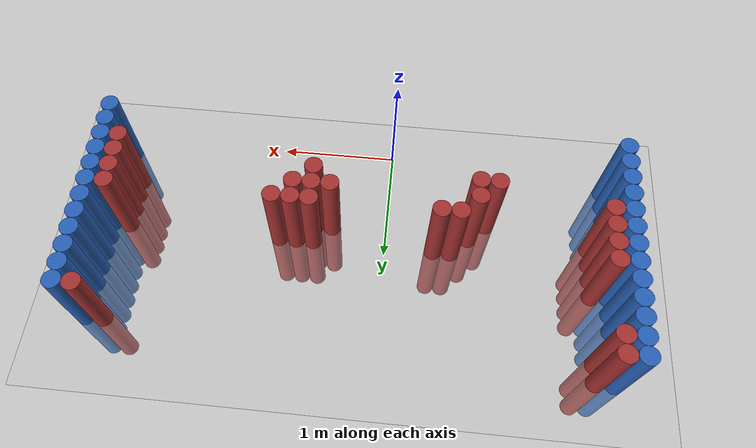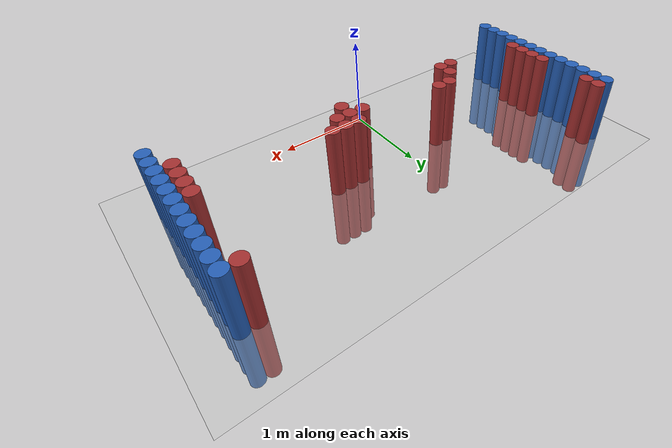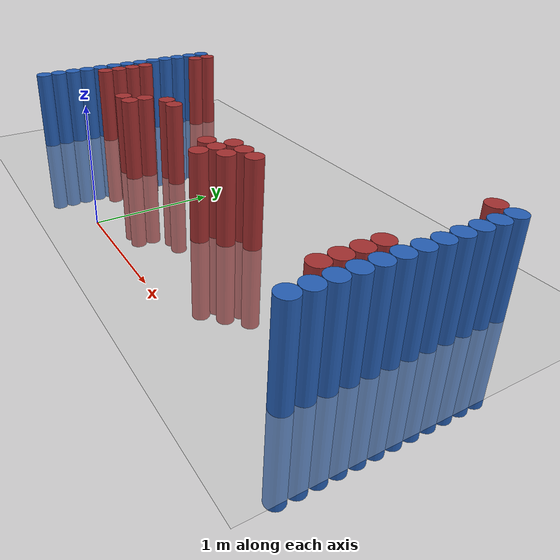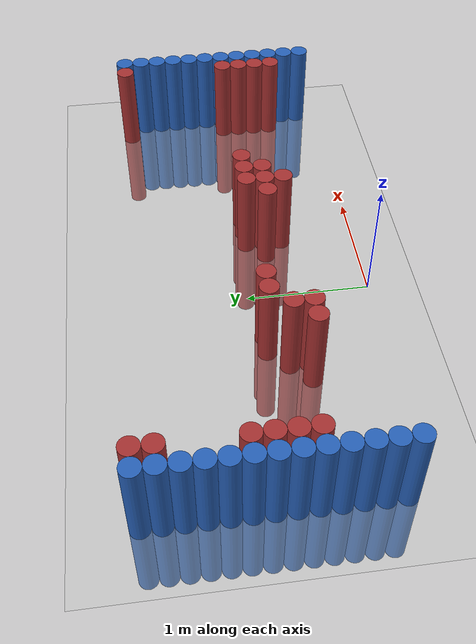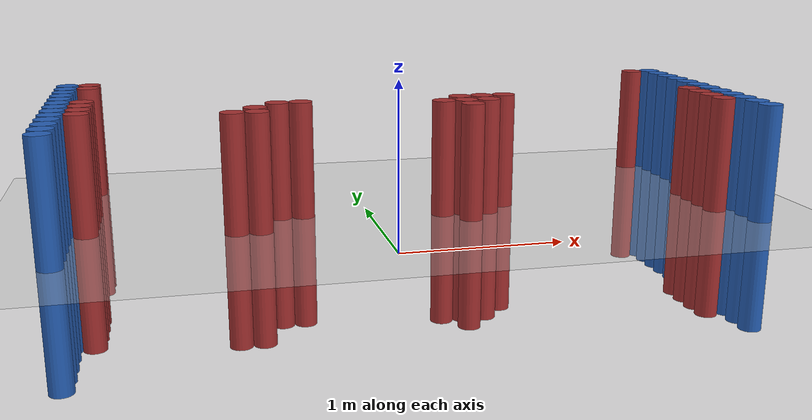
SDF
<sdf version="1.6">
 <world name="default">
  <model name="ground_plane">
   <static>1</static>
   <link name="link">
    <collision name="collision">
     <geometry><plane><normal>0 0 1</normal><size>100 100</size></plane></geometry>
     <surface><friction><ode><mu>100</mu><mu2>50</mu2></ode></friction></surface>
    </collision>
    <visual name="visual">
     <cast_shadows>0</cast_shadows>
     <geometry><plane><normal>0 0 1</normal><size>100 100</size></plane></geometry>
     <material>
      <script><uri>file://media/materials/scripts/gazebo.material</uri><name>Gazebo/Grey</name></script>
     </material>
    </visual>
   </link>
  </model>
  <model name="unit_cylinder_96">
   <static>1</static>
   <pose>-1.925000 0.175000 0.000000 0.000000 0.000000 0.000000</pose>
   <link name="link">
    <inertial>
     <mass>1</mass>
     <inertia><ixx>0.145833</ixx><ixy>0</ixy><ixz>0</ixz><iyy>0.145833</iyy><iyz>0</iyz><izz>0.125</izz></inertia>
    </inertial>
    <collision name="collision">
     <geometry><cylinder><radius>0.075000</radius><length>1.5</length></cylinder></geometry>
    </collision>
    <visual name="visual">
     <geometry><cylinder><radius>0.075000</radius><length>1.5</length></cylinder></geometry>
     <material>
      <ambient>0.152000 0.379000 0.720000 1</ambient>
      <diffuse>0.152000 0.379000 0.720000 1</diffuse>
     </material>
     <material>
      <script><name>Gazebo/Grey</name><uri>file://media/materials/scripts/gazebo.material</uri></script>
     </material>
    </visual>
   </link>
  </model>
  <model name="unit_cylinder_97">
   <static>1</static>
   <pose>-1.925000 0.325000 0.000000 0.000000 0.000000 0.000000</pose>
   <link name="link">
    <inertial>
     <mass>1</mass>
     <inertia><ixx>0.145833</ixx><ixy>0</ixy><ixz>0</ixz><iyy>0.145833</iyy><iyz>0</iyz><izz>0.125</izz></inertia>
    </inertial>
    <collision name="collision">
     <geometry><cylinder><radius>0.075000</radius><length>1.5</length></cylinder></geometry>
    </collision>
    <visual name="visual">
     <geometry><cylinder><radius>0.075000</radius><length>1.5</length></cylinder></geometry>
     <material>
      <ambient>0.152000 0.379000 0.720000 1</ambient>
      <diffuse>0.152000 0.379000 0.720000 1</diffuse>
     </material>
     <material>
      <script><name>Gazebo/Grey</name><uri>file://media/materials/scripts/gazebo.material</uri></script>
     </material>
    </visual>
   </link>
  </model>
  <model name="unit_cylinder_98">
   <static>1</static>
   <pose>-1.925000 0.475000 0.000000 0.000000 0.000000 0.000000</pose>
   <link name="link">
    <inertial>
     <mass>1</mass>
     <inertia><ixx>0.145833</ixx><ixy>0</ixy><ixz>0</ixz><iyy>0.145833</iyy><iyz>0</iyz><izz>0.125</izz></inertia>
    </inertial>
    <collision name="collision">
     <geometry><cylinder><radius>0.075000</radius><length>1.5</length></cylinder></geometry>
    </collision>
    <visual name="visual">
     <geometry><cylinder><radius>0.075000</radius><length>1.5</length></cylinder></geometry>
     <material>
      <ambient>0.152000 0.379000 0.720000 1</ambient>
      <diffuse>0.152000 0.379000 0.720000 1</diffuse>
     </material>
     <material>
      <script><name>Gazebo/Grey</name><uri>file://media/materials/scripts/gazebo.material</uri></script>
     </material>
    </visual>
   </link>
  </model>
  <model name="unit_cylinder_99">
   <static>1</static>
   <pose>-1.925000 0.625000 0.000000 0.000000 0.000000 0.000000</pose>
   <link name="link">
    <inertial>
     <mass>1</mass>
     <inertia><ixx>0.145833</ixx><ixy>0</ixy><ixz>0</ixz><iyy>0.145833</iyy><iyz>0</iyz><izz>0.125</izz></inertia>
    </inertial>
    <collision name="collision">
     <geometry><cylinder><radius>0.075000</radius><length>1.5</length></cylinder></geometry>
    </collision>
    <visual name="visual">
     <geometry><cylinder><radius>0.075000</radius><length>1.5</length></cylinder></geometry>
     <material>
      <ambient>0.152000 0.379000 0.720000 1</ambient>
      <diffuse>0.152000 0.379000 0.720000 1</diffuse>
     </material>
     <material>
      <script><name>Gazebo/Grey</name><uri>file://media/materials/scripts/gazebo.material</uri></script>
     </material>
    </visual>
   </link>
  </model>
  <model name="unit_cylinder_100">
   <static>1</static>
   <pose>-1.925000 0.775000 0.000000 0.000000 0.000000 0.000000</pose>
   <link name="link">
    <inertial>
     <mass>1</mass>
     <inertia><ixx>0.145833</ixx><ixy>0</ixy><ixz>0</ixz><iyy>0.145833</iyy><iyz>0</iyz><izz>0.125</izz></inertia>
    </inertial>
    <collision name="collision">
     <geometry><cylinder><radius>0.075000</radius><length>1.5</length></cylinder></geometry>
    </collision>
    <visual name="visual">
     <geometry><cylinder><radius>0.075000</radius><length>1.5</length></cylinder></geometry>
     <material>
      <ambient>0.152000 0.379000 0.720000 1</ambient>
      <diffuse>0.152000 0.379000 0.720000 1</diffuse>
     </material>
     <material>
      <script><name>Gazebo/Grey</name><uri>file://media/materials/scripts/gazebo.material</uri></script>
     </material>
    </visual>
   </link>
  </model>
  <model name="unit_cylinder_101">
   <static>1</static>
   <pose>-1.925000 0.925000 0.000000 0.000000 0.000000 0.000000</pose>
   <link name="link">
    <inertial>
     <mass>1</mass>
     <inertia><ixx>0.145833</ixx><ixy>0</ixy><ixz>0</ixz><iyy>0.145833</iyy><iyz>0</iyz><izz>0.125</izz></inertia>
    </inertial>
    <collision name="collision">
     <geometry><cylinder><radius>0.075000</radius><length>1.5</length></cylinder></geometry>
    </collision>
    <visual name="visual">
     <geometry><cylinder><radius>0.075000</radius><length>1.5</length></cylinder></geometry>
     <material>
      <ambient>0.152000 0.379000 0.720000 1</ambient>
      <diffuse>0.152000 0.379000 0.720000 1</diffuse>
     </material>
     <material>
      <script><name>Gazebo/Grey</name><uri>file://media/materials/scripts/gazebo.material</uri></script>
     </material>
    </visual>
   </link>
  </model>
  <model name="unit_cylinder_102">
   <static>1</static>
   <pose>-1.925000 1.075000 0.000000 0.000000 0.000000 0.000000</pose>
   <link name="link">
    <inertial>
     <mass>1</mass>
     <inertia><ixx>0.145833</ixx><ixy>0</ixy><ixz>0</ixz><iyy>0.145833</iyy><iyz>0</iyz><izz>0.125</izz></inertia>
    </inertial>
    <collision name="collision">
     <geometry><cylinder><radius>0.075000</radius><length>1.5</length></cylinder></geometry>
    </collision>
    <visual name="visual">
     <geometry><cylinder><radius>0.075000</radius><length>1.5</length></cylinder></geometry>
     <material>
      <ambient>0.152000 0.379000 0.720000 1</ambient>
      <diffuse>0.152000 0.379000 0.720000 1</diffuse>
     </material>
     <material>
      <script><name>Gazebo/Grey</name><uri>file://media/materials/scripts/gazebo.material</uri></script>
     </material>
    </visual>
   </link>
  </model>
  <model name="unit_cylinder_103">
   <static>1</static>
   <pose>-1.925000 1.225000 0.000000 0.000000 0.000000 0.000000</pose>
   <link name="link">
    <inertial>
     <mass>1</mass>
     <inertia><ixx>0.145833</ixx><ixy>0</ixy><ixz>0</ixz><iyy>0.145833</iyy><iyz>0</iyz><izz>0.125</izz></inertia>
    </inertial>
    <collision name="collision">
     <geometry><cylinder><radius>0.075000</radius><length>1.5</length></cylinder></geometry>
    </collision>
    <visual name="visual">
     <geometry><cylinder><radius>0.075000</radius><length>1.5</length></cylinder></geometry>
     <material>
      <ambient>0.152000 0.379000 0.720000 1</ambient>
      <diffuse>0.152000 0.379000 0.720000 1</diffuse>
     </material>
     <material>
      <script><name>Gazebo/Grey</name><uri>file://media/materials/scripts/gazebo.material</uri></script>
     </material>
    </visual>
   </link>
  </model>
  <model name="unit_cylinder_104">
   <static>1</static>
   <pose>-1.925000 1.375000 0.000000 0.000000 0.000000 0.000000</pose>
   <link name="link">
    <inertial>
     <mass>1</mass>
     <inertia><ixx>0.145833</ixx><ixy>0</ixy><ixz>0</ixz><iyy>0.145833</iyy><iyz>0</iyz><izz>0.125</izz></inertia>
    </inertial>
    <collision name="collision">
     <geometry><cylinder><radius>0.075000</radius><length>1.5</length></cylinder></geometry>
    </collision>
    <visual name="visual">
     <geometry><cylinder><radius>0.075000</radius><length>1.5</length></cylinder></geometry>
     <material>
      <ambient>0.152000 0.379000 0.720000 1</ambient>
      <diffuse>0.152000 0.379000 0.720000 1</diffuse>
     </material>
     <material>
      <script><name>Gazebo/Grey</name><uri>file://media/materials/scripts/gazebo.material</uri></script>
     </material>
    </visual>
   </link>
  </model>
  <model name="unit_cylinder_105">
   <static>1</static>
   <pose>-1.925000 1.525000 0.000000 0.000000 0.000000 0.000000</pose>
   <link name="link">
    <inertial>
     <mass>1</mass>
     <inertia><ixx>0.145833</ixx><ixy>0</ixy><ixz>0</ixz><iyy>0.145833</iyy><iyz>0</iyz><izz>0.125</izz></inertia>
    </inertial>
    <collision name="collision">
     <geometry><cylinder><radius>0.075000</radius><length>1.5</length></cylinder></geometry>
    </collision>
    <visual name="visual">
     <geometry><cylinder><radius>0.075000</radius><length>1.5</length></cylinder></geometry>
     <material>
      <ambient>0.152000 0.379000 0.720000 1</ambient>
      <diffuse>0.152000 0.379000 0.720000 1</diffuse>
     </material>
     <material>
      <script><name>Gazebo/Grey</name><uri>file://media/materials/scripts/gazebo.material</uri></script>
     </material>
    </visual>
   </link>
  </model>
  <model name="unit_cylinder_106">
   <static>1</static>
   <pose>-1.925000 1.675000 0.000000 0.000000 0.000000 0.000000</pose>
   <link name="link">
    <inertial>
     <mass>1</mass>
     <inertia><ixx>0.145833</ixx><ixy>0</ixy><ixz>0</ixz><iyy>0.145833</iyy><iyz>0</iyz><izz>0.125</izz></inertia>
    </inertial>
    <collision name="collision">
     <geometry><cylinder><radius>0.075000</radius><length>1.5</length></cylinder></geometry>
    </collision>
    <visual name="visual">
     <geometry><cylinder><radius>0.075000</radius><length>1.5</length></cylinder></geometry>
     <material>
      <ambient>0.152000 0.379000 0.720000 1</ambient>
      <diffuse>0.152000 0.379000 0.720000 1</diffuse>
     </material>
     <material>
      <script><name>Gazebo/Grey</name><uri>file://media/materials/scripts/gazebo.material</uri></script>
     </material>
    </visual>
   </link>
  </model>
  <model name="unit_cylinder_107">
   <static>1</static>
   <pose>-1.925000 1.825000 0.000000 0.000000 0.000000 0.000000</pose>
   <link name="link">
    <inertial>
     <mass>1</mass>
     <inertia><ixx>0.145833</ixx><ixy>0</ixy><ixz>0</ixz><iyy>0.145833</iyy><iyz>0</iyz><izz>0.125</izz></inertia>
    </inertial>
    <collision name="collision">
     <geometry><cylinder><radius>0.075000</radius><length>1.5</length></cylinder></geometry>
    </collision>
    <visual name="visual">
     <geometry><cylinder><radius>0.075000</radius><length>1.5</length></cylinder></geometry>
     <material>
      <ambient>0.152000 0.379000 0.720000 1</ambient>
      <diffuse>0.152000 0.379000 0.720000 1</diffuse>
     </material>
     <material>
      <script><name>Gazebo/Grey</name><uri>file://media/materials/scripts/gazebo.material</uri></script>
     </material>
    </visual>
   </link>
  </model>
  <model name="unit_cylinder_108">
   <static>1</static>
   <pose>-1.925000 1.975000 0.000000 0.000000 0.000000 0.000000</pose>
   <link name="link">
    <inertial>
     <mass>1</mass>
     <inertia><ixx>0.145833</ixx><ixy>0</ixy><ixz>0</ixz><iyy>0.145833</iyy><iyz>0</iyz><izz>0.125</izz></inertia>
    </inertial>
    <collision name="collision">
     <geometry><cylinder><radius>0.075000</radius><length>1.5</length></cylinder></geometry>
    </collision>
    <visual name="visual">
     <geometry><cylinder><radius>0.075000</radius><length>1.5</length></cylinder></geometry>
     <material>
      <ambient>0.152000 0.379000 0.720000 1</ambient>
      <diffuse>0.152000 0.379000 0.720000 1</diffuse>
     </material>
     <material>
      <script><name>Gazebo/Grey</name><uri>file://media/materials/scripts/gazebo.material</uri></script>
     </material>
    </visual>
   </link>
  </model>
  <model name="unit_cylinder_126">
   <static>1</static>
   <pose>-1.775000 0.775000 0.000000 0.000000 0.000000 0.000000</pose>
   <link name="link">
    <inertial>
     <mass>1</mass>
     <inertia><ixx>0.145833</ixx><ixy>0</ixy><ixz>0</ixz><iyy>0.145833</iyy><iyz>0</iyz><izz>0.125</izz></inertia>
    </inertial>
    <collision name="collision">
     <geometry><cylinder><radius>0.075000</radius><length>1.5</length></cylinder></geometry>
    </collision>
    <visual name="visual">
     <geometry><cylinder><radius>0.075000</radius><length>1.5</length></cylinder></geometry>
     <material>
      <ambient>0.648000 0.192000 0.192000 1</ambient>
      <diffuse>0.648000 0.192000 0.192000 1</diffuse>
     </material>
     <material>
      <script><name>Gazebo/Grey</name><uri>file://media/materials/scripts/gazebo.material</uri></script>
     </material>
    </visual>
   </link>
  </model>
  <model name="unit_cylinder_127">
   <static>1</static>
   <pose>-1.775000 0.925000 0.000000 0.000000 0.000000 0.000000</pose>
   <link name="link">
    <inertial>
     <mass>1</mass>
     <inertia><ixx>0.145833</ixx><ixy>0</ixy><ixz>0</ixz><iyy>0.145833</iyy><iyz>0</iyz><izz>0.125</izz></inertia>
    </inertial>
    <collision name="collision">
     <geometry><cylinder><radius>0.075000</radius><length>1.5</length></cylinder></geometry>
    </collision>
    <visual name="visual">
     <geometry><cylinder><radius>0.075000</radius><length>1.5</length></cylinder></geometry>
     <material>
      <ambient>0.648000 0.192000 0.192000 1</ambient>
      <diffuse>0.648000 0.192000 0.192000 1</diffuse>
     </material>
     <material>
      <script><name>Gazebo/Grey</name><uri>file://media/materials/scripts/gazebo.material</uri></script>
     </material>
    </visual>
   </link>
  </model>
  <model name="unit_cylinder_128">
   <static>1</static>
   <pose>-1.775000 1.075000 0.000000 0.000000 0.000000 0.000000</pose>
   <link name="link">
    <inertial>
     <mass>1</mass>
     <inertia><ixx>0.145833</ixx><ixy>0</ixy><ixz>0</ixz><iyy>0.145833</iyy><iyz>0</iyz><izz>0.125</izz></inertia>
    </inertial>
    <collision name="collision">
     <geometry><cylinder><radius>0.075000</radius><length>1.5</length></cylinder></geometry>
    </collision>
    <visual name="visual">
     <geometry><cylinder><radius>0.075000</radius><length>1.5</length></cylinder></geometry>
     <material>
      <ambient>0.648000 0.192000 0.192000 1</ambient>
      <diffuse>0.648000 0.192000 0.192000 1</diffuse>
     </material>
     <material>
      <script><name>Gazebo/Grey</name><uri>file://media/materials/scripts/gazebo.material</uri></script>
     </material>
    </visual>
   </link>
  </model>
  <model name="unit_cylinder_129">
   <static>1</static>
   <pose>-1.775000 1.225000 0.000000 0.000000 0.000000 0.000000</pose>
   <link name="link">
    <inertial>
     <mass>1</mass>
     <inertia><ixx>0.145833</ixx><ixy>0</ixy><ixz>0</ixz><iyy>0.145833</iyy><iyz>0</iyz><izz>0.125</izz></inertia>
    </inertial>
    <collision name="collision">
     <geometry><cylinder><radius>0.075000</radius><length>1.5</length></cylinder></geometry>
    </collision>
    <visual name="visual">
     <geometry><cylinder><radius>0.075000</radius><length>1.5</length></cylinder></geometry>
     <material>
      <ambient>0.648000 0.192000 0.192000 1</ambient>
      <diffuse>0.648000 0.192000 0.192000 1</diffuse>
     </material>
     <material>
      <script><name>Gazebo/Grey</name><uri>file://media/materials/scripts/gazebo.material</uri></script>
     </material>
    </visual>
   </link>
  </model>
  <model name="unit_cylinder_130">
   <static>1</static>
   <pose>-1.775000 1.825000 0.000000 0.000000 0.000000 0.000000</pose>
   <link name="link">
    <inertial>
     <mass>1</mass>
     <inertia><ixx>0.145833</ixx><ixy>0</ixy><ixz>0</ixz><iyy>0.145833</iyy><iyz>0</iyz><izz>0.125</izz></inertia>
    </inertial>
    <collision name="collision">
     <geometry><cylinder><radius>0.075000</radius><length>1.5</length></cylinder></geometry>
    </collision>
    <visual name="visual">
     <geometry><cylinder><radius>0.075000</radius><length>1.5</length></cylinder></geometry>
     <material>
      <ambient>0.648000 0.192000 0.192000 1</ambient>
      <diffuse>0.648000 0.192000 0.192000 1</diffuse>
     </material>
     <material>
      <script><name>Gazebo/Grey</name><uri>file://media/materials/scripts/gazebo.material</uri></script>
     </material>
    </visual>
   </link>
  </model>
  <model name="unit_cylinder_131">
   <static>1</static>
   <pose>-1.775000 1.975000 0.000000 0.000000 0.000000 0.000000</pose>
   <link name="link">
    <inertial>
     <mass>1</mass>
     <inertia><ixx>0.145833</ixx><ixy>0</ixy><ixz>0</ixz><iyy>0.145833</iyy><iyz>0</iyz><izz>0.125</izz></inertia>
    </inertial>
    <collision name="collision">
     <geometry><cylinder><radius>0.075000</radius><length>1.5</length></cylinder></geometry>
    </collision>
    <visual name="visual">
     <geometry><cylinder><radius>0.075000</radius><length>1.5</length></cylinder></geometry>
     <material>
      <ambient>0.648000 0.192000 0.192000 1</ambient>
      <diffuse>0.648000 0.192000 0.192000 1</diffuse>
     </material>
     <material>
      <script><name>Gazebo/Grey</name><uri>file://media/materials/scripts/gazebo.material</uri></script>
     </material>
    </visual>
   </link>
  </model>
  <model name="unit_cylinder_161">
   <static>1</static>
   <pose>-0.875000 0.625000 0.000000 0.000000 0.000000 0.000000</pose>
   <link name="link">
    <inertial>
     <mass>1</mass>
     <inertia><ixx>0.145833</ixx><ixy>0</ixy><ixz>0</ixz><iyy>0.145833</iyy><iyz>0</iyz><izz>0.125</izz></inertia>
    </inertial>
    <collision name="collision">
     <geometry><cylinder><radius>0.075000</radius><length>1.5</length></cylinder></geometry>
    </collision>
    <visual name="visual">
     <geometry><cylinder><radius>0.075000</radius><length>1.5</length></cylinder></geometry>
     <material>
      <ambient>0.648000 0.192000 0.192000 1</ambient>
      <diffuse>0.648000 0.192000 0.192000 1</diffuse>
     </material>
     <material>
      <script><name>Gazebo/Grey</name><uri>file://media/materials/scripts/gazebo.material</uri></script>
     </material>
    </visual>
   </link>
  </model>
  <model name="unit_cylinder_166">
   <static>1</static>
   <pose>-0.725000 0.625000 0.000000 0.000000 0.000000 0.000000</pose>
   <link name="link">
    <inertial>
     <mass>1</mass>
     <inertia><ixx>0.145833</ixx><ixy>0</ixy><ixz>0</ixz><iyy>0.145833</iyy><iyz>0</iyz><izz>0.125</izz></inertia>
    </inertial>
    <collision name="collision">
     <geometry><cylinder><radius>0.075000</radius><length>1.5</length></cylinder></geometry>
    </collision>
    <visual name="visual">
     <geometry><cylinder><radius>0.075000</radius><length>1.5</length></cylinder></geometry>
     <material>
      <ambient>0.648000 0.192000 0.192000 1</ambient>
      <diffuse>0.648000 0.192000 0.192000 1</diffuse>
     </material>
     <material>
      <script><name>Gazebo/Grey</name><uri>file://media/materials/scripts/gazebo.material</uri></script>
     </material>
    </visual>
   </link>
  </model>
  <model name="unit_cylinder_167">
   <static>1</static>
   <pose>-0.725000 0.775000 0.000000 0.000000 0.000000 0.000000</pose>
   <link name="link">
    <inertial>
     <mass>1</mass>
     <inertia><ixx>0.145833</ixx><ixy>0</ixy><ixz>0</ixz><iyy>0.145833</iyy><iyz>0</iyz><izz>0.125</izz></inertia>
    </inertial>
    <collision name="collision">
     <geometry><cylinder><radius>0.075000</radius><length>1.5</length></cylinder></geometry>
    </collision>
    <visual name="visual">
     <geometry><cylinder><radius>0.075000</radius><length>1.5</length></cylinder></geometry>
     <material>
      <ambient>0.648000 0.192000 0.192000 1</ambient>
      <diffuse>0.648000 0.192000 0.192000 1</diffuse>
     </material>
     <material>
      <script><name>Gazebo/Grey</name><uri>file://media/materials/scripts/gazebo.material</uri></script>
     </material>
    </visual>
   </link>
  </model>
  <model name="unit_cylinder_172">
   <static>1</static>
   <pose>-0.575000 0.925000 0.000000 0.000000 0.000000 0.000000</pose>
   <link name="link">
    <inertial>
     <mass>1</mass>
     <inertia><ixx>0.145833</ixx><ixy>0</ixy><ixz>0</ixz><iyy>0.145833</iyy><iyz>0</iyz><izz>0.125</izz></inertia>
    </inertial>
    <collision name="collision">
     <geometry><cylinder><radius>0.075000</radius><length>1.5</length></cylinder></geometry>
    </collision>
    <visual name="visual">
     <geometry><cylinder><radius>0.075000</radius><length>1.5</length></cylinder></geometry>
     <material>
      <ambient>0.648000 0.192000 0.192000 1</ambient>
      <diffuse>0.648000 0.192000 0.192000 1</diffuse>
     </material>
     <material>
      <script><name>Gazebo/Grey</name><uri>file://media/materials/scripts/gazebo.material</uri></script>
     </material>
    </visual>
   </link>
  </model>
  <model name="unit_cylinder_175">
   <static>1</static>
   <pose>-0.425000 0.925000 0.000000 0.000000 0.000000 0.000000</pose>
   <link name="link">
    <inertial>
     <mass>1</mass>
     <inertia><ixx>0.145833</ixx><ixy>0</ixy><ixz>0</ixz><iyy>0.145833</iyy><iyz>0</iyz><izz>0.125</izz></inertia>
    </inertial>
    <collision name="collision">
     <geometry><cylinder><radius>0.075000</radius><length>1.5</length></cylinder></geometry>
    </collision>
    <visual name="visual">
     <geometry><cylinder><radius>0.075000</radius><length>1.5</length></cylinder></geometry>
     <material>
      <ambient>0.648000 0.192000 0.192000 1</ambient>
      <diffuse>0.648000 0.192000 0.192000 1</diffuse>
     </material>
     <material>
      <script><name>Gazebo/Grey</name><uri>file://media/materials/scripts/gazebo.material</uri></script>
     </material>
    </visual>
   </link>
  </model>
  <model name="unit_cylinder_185">
   <static>1</static>
   <pose>0.475000 0.775000 0.000000 0.000000 0.000000 0.000000</pose>
   <link name="link">
    <inertial>
     <mass>1</mass>
     <inertia><ixx>0.145833</ixx><ixy>0</ixy><ixz>0</ixz><iyy>0.145833</iyy><iyz>0</iyz><izz>0.125</izz></inertia>
    </inertial>
    <collision name="collision">
     <geometry><cylinder><radius>0.075000</radius><length>1.5</length></cylinder></geometry>
    </collision>
    <visual name="visual">
     <geometry><cylinder><radius>0.075000</radius><length>1.5</length></cylinder></geometry>
     <material>
      <ambient>0.648000 0.192000 0.192000 1</ambient>
      <diffuse>0.648000 0.192000 0.192000 1</diffuse>
     </material>
     <material>
      <script><name>Gazebo/Grey</name><uri>file://media/materials/scripts/gazebo.material</uri></script>
     </material>
    </visual>
   </link>
  </model>
  <model name="unit_cylinder_188">
   <static>1</static>
   <pose>0.625000 0.625000 0.000000 0.000000 0.000000 0.000000</pose>
   <link name="link">
    <inertial>
     <mass>1</mass>
     <inertia><ixx>0.145833</ixx><ixy>0</ixy><ixz>0</ixz><iyy>0.145833</iyy><iyz>0</iyz><izz>0.125</izz></inertia>
    </inertial>
    <collision name="collision">
     <geometry><cylinder><radius>0.075000</radius><length>1.5</length></cylinder></geometry>
    </collision>
    <visual name="visual">
     <geometry><cylinder><radius>0.075000</radius><length>1.5</length></cylinder></geometry>
     <material>
      <ambient>0.648000 0.192000 0.192000 1</ambient>
      <diffuse>0.648000 0.192000 0.192000 1</diffuse>
     </material>
     <material>
      <script><name>Gazebo/Grey</name><uri>file://media/materials/scripts/gazebo.material</uri></script>
     </material>
    </visual>
   </link>
  </model>
  <model name="unit_cylinder_189">
   <static>1</static>
   <pose>0.625000 0.775000 0.000000 0.000000 0.000000 0.000000</pose>
   <link name="link">
    <inertial>
     <mass>1</mass>
     <inertia><ixx>0.145833</ixx><ixy>0</ixy><ixz>0</ixz><iyy>0.145833</iyy><iyz>0</iyz><izz>0.125</izz></inertia>
    </inertial>
    <collision name="collision">
     <geometry><cylinder><radius>0.075000</radius><length>1.5</length></cylinder></geometry>
    </collision>
    <visual name="visual">
     <geometry><cylinder><radius>0.075000</radius><length>1.5</length></cylinder></geometry>
     <material>
      <ambient>0.648000 0.192000 0.192000 1</ambient>
      <diffuse>0.648000 0.192000 0.192000 1</diffuse>
     </material>
     <material>
      <script><name>Gazebo/Grey</name><uri>file://media/materials/scripts/gazebo.material</uri></script>
     </material>
    </visual>
   </link>
  </model>
  <model name="unit_cylinder_190">
   <static>1</static>
   <pose>0.625000 0.925000 0.000000 0.000000 0.000000 0.000000</pose>
   <link name="link">
    <inertial>
     <mass>1</mass>
     <inertia><ixx>0.145833</ixx><ixy>0</ixy><ixz>0</ixz><iyy>0.145833</iyy><iyz>0</iyz><izz>0.125</izz></inertia>
    </inertial>
    <collision name="collision">
     <geometry><cylinder><radius>0.075000</radius><length>1.5</length></cylinder></geometry>
    </collision>
    <visual name="visual">
     <geometry><cylinder><radius>0.075000</radius><length>1.5</length></cylinder></geometry>
     <material>
      <ambient>0.648000 0.192000 0.192000 1</ambient>
      <diffuse>0.648000 0.192000 0.192000 1</diffuse>
     </material>
     <material>
      <script><name>Gazebo/Grey</name><uri>file://media/materials/scripts/gazebo.material</uri></script>
     </material>
    </visual>
   </link>
  </model>
  <model name="unit_cylinder_193">
   <static>1</static>
   <pose>0.775000 0.775000 0.000000 0.000000 0.000000 0.000000</pose>
   <link name="link">
    <inertial>
     <mass>1</mass>
     <inertia><ixx>0.145833</ixx><ixy>0</ixy><ixz>0</ixz><iyy>0.145833</iyy><iyz>0</iyz><izz>0.125</izz></inertia>
    </inertial>
    <collision name="collision">
     <geometry><cylinder><radius>0.075000</radius><length>1.5</length></cylinder></geometry>
    </collision>
    <visual name="visual">
     <geometry><cylinder><radius>0.075000</radius><length>1.5</length></cylinder></geometry>
     <material>
      <ambient>0.648000 0.192000 0.192000 1</ambient>
      <diffuse>0.648000 0.192000 0.192000 1</diffuse>
     </material>
     <material>
      <script><name>Gazebo/Grey</name><uri>file://media/materials/scripts/gazebo.material</uri></script>
     </material>
    </visual>
   </link>
  </model>
  <model name="unit_cylinder_194">
   <static>1</static>
   <pose>0.775000 0.925000 0.000000 0.000000 0.000000 0.000000</pose>
   <link name="link">
    <inertial>
     <mass>1</mass>
     <inertia><ixx>0.145833</ixx><ixy>0</ixy><ixz>0</ixz><iyy>0.145833</iyy><iyz>0</iyz><izz>0.125</izz></inertia>
    </inertial>
    <collision name="collision">
     <geometry><cylinder><radius>0.075000</radius><length>1.5</length></cylinder></geometry>
    </collision>
    <visual name="visual">
     <geometry><cylinder><radius>0.075000</radius><length>1.5</length></cylinder></geometry>
     <material>
      <ambient>0.648000 0.192000 0.192000 1</ambient>
      <diffuse>0.648000 0.192000 0.192000 1</diffuse>
     </material>
     <material>
      <script><name>Gazebo/Grey</name><uri>file://media/materials/scripts/gazebo.material</uri></script>
     </material>
    </visual>
   </link>
  </model>
  <model name="unit_cylinder_195">
   <static>1</static>
   <pose>0.925000 0.925000 0.000000 0.000000 0.000000 0.000000</pose>
   <link name="link">
    <inertial>
     <mass>1</mass>
     <inertia><ixx>0.145833</ixx><ixy>0</ixy><ixz>0</ixz><iyy>0.145833</iyy><iyz>0</iyz><izz>0.125</izz></inertia>
    </inertial>
    <collision name="collision">
     <geometry><cylinder><radius>0.075000</radius><length>1.5</length></cylinder></geometry>
    </collision>
    <visual name="visual">
     <geometry><cylinder><radius>0.075000</radius><length>1.5</length></cylinder></geometry>
     <material>
      <ambient>0.648000 0.192000 0.192000 1</ambient>
      <diffuse>0.648000 0.192000 0.192000 1</diffuse>
     </material>
     <material>
      <script><name>Gazebo/Grey</name><uri>file://media/materials/scripts/gazebo.material</uri></script>
     </material>
    </visual>
   </link>
  </model>
  <model name="unit_cylinder_199">
   <static>1</static>
   <pose>2.275000 0.475000 0.000000 0.000000 0.000000 0.000000</pose>
   <link name="link">
    <inertial>
     <mass>1</mass>
     <inertia><ixx>0.145833</ixx><ixy>0</ixy><ixz>0</ixz><iyy>0.145833</iyy><iyz>0</iyz><izz>0.125</izz></inertia>
    </inertial>
    <collision name="collision">
     <geometry><cylinder><radius>0.075000</radius><length>1.5</length></cylinder></geometry>
    </collision>
    <visual name="visual">
     <geometry><cylinder><radius>0.075000</radius><length>1.5</length></cylinder></geometry>
     <material>
      <ambient>0.648000 0.192000 0.192000 1</ambient>
      <diffuse>0.648000 0.192000 0.192000 1</diffuse>
     </material>
     <material>
      <script><name>Gazebo/Grey</name><uri>file://media/materials/scripts/gazebo.material</uri></script>
     </material>
    </visual>
   </link>
  </model>
  <model name="unit_cylinder_200">
   <static>1</static>
   <pose>2.275000 0.625000 0.000000 0.000000 0.000000 0.000000</pose>
   <link name="link">
    <inertial>
     <mass>1</mass>
     <inertia><ixx>0.145833</ixx><ixy>0</ixy><ixz>0</ixz><iyy>0.145833</iyy><iyz>0</iyz><izz>0.125</izz></inertia>
    </inertial>
    <collision name="collision">
     <geometry><cylinder><radius>0.075000</radius><length>1.5</length></cylinder></geometry>
    </collision>
    <visual name="visual">
     <geometry><cylinder><radius>0.075000</radius><length>1.5</length></cylinder></geometry>
     <material>
      <ambient>0.648000 0.192000 0.192000 1</ambient>
      <diffuse>0.648000 0.192000 0.192000 1</diffuse>
     </material>
     <material>
      <script><name>Gazebo/Grey</name><uri>file://media/materials/scripts/gazebo.material</uri></script>
     </material>
    </visual>
   </link>
  </model>
  <model name="unit_cylinder_201">
   <static>1</static>
   <pose>2.275000 0.775000 0.000000 0.000000 0.000000 0.000000</pose>
   <link name="link">
    <inertial>
     <mass>1</mass>
     <inertia><ixx>0.145833</ixx><ixy>0</ixy><ixz>0</ixz><iyy>0.145833</iyy><iyz>0</iyz><izz>0.125</izz></inertia>
    </inertial>
    <collision name="collision">
     <geometry><cylinder><radius>0.075000</radius><length>1.5</length></cylinder></geometry>
    </collision>
    <visual name="visual">
     <geometry><cylinder><radius>0.075000</radius><length>1.5</length></cylinder></geometry>
     <material>
      <ambient>0.648000 0.192000 0.192000 1</ambient>
      <diffuse>0.648000 0.192000 0.192000 1</diffuse>
     </material>
     <material>
      <script><name>Gazebo/Grey</name><uri>file://media/materials/scripts/gazebo.material</uri></script>
     </material>
    </visual>
   </link>
  </model>
  <model name="unit_cylinder_202">
   <static>1</static>
   <pose>2.275000 0.925000 0.000000 0.000000 0.000000 0.000000</pose>
   <link name="link">
    <inertial>
     <mass>1</mass>
     <inertia><ixx>0.145833</ixx><ixy>0</ixy><ixz>0</ixz><iyy>0.145833</iyy><iyz>0</iyz><izz>0.125</izz></inertia>
    </inertial>
    <collision name="collision">
     <geometry><cylinder><radius>0.075000</radius><length>1.5</length></cylinder></geometry>
    </collision>
    <visual name="visual">
     <geometry><cylinder><radius>0.075000</radius><length>1.5</length></cylinder></geometry>
     <material>
      <ambient>0.648000 0.192000 0.192000 1</ambient>
      <diffuse>0.648000 0.192000 0.192000 1</diffuse>
     </material>
     <material>
      <script><name>Gazebo/Grey</name><uri>file://media/materials/scripts/gazebo.material</uri></script>
     </material>
    </visual>
   </link>
  </model>
  <model name="unit_cylinder_203">
   <static>1</static>
   <pose>2.275000 1.825000 0.000000 0.000000 0.000000 0.000000</pose>
   <link name="link">
    <inertial>
     <mass>1</mass>
     <inertia><ixx>0.145833</ixx><ixy>0</ixy><ixz>0</ixz><iyy>0.145833</iyy><iyz>0</iyz><izz>0.125</izz></inertia>
    </inertial>
    <collision name="collision">
     <geometry><cylinder><radius>0.075000</radius><length>1.5</length></cylinder></geometry>
    </collision>
    <visual name="visual">
     <geometry><cylinder><radius>0.075000</radius><length>1.5</length></cylinder></geometry>
     <material>
      <ambient>0.648000 0.192000 0.192000 1</ambient>
      <diffuse>0.648000 0.192000 0.192000 1</diffuse>
     </material>
     <material>
      <script><name>Gazebo/Grey</name><uri>file://media/materials/scripts/gazebo.material</uri></script>
     </material>
    </visual>
   </link>
  </model>
  <model name="unit_cylinder_210">
   <static>1</static>
   <pose>2.425000 0.175000 0.000000 0.000000 0.000000 0.000000</pose>
   <link name="link">
    <inertial>
     <mass>1</mass>
     <inertia><ixx>0.145833</ixx><ixy>0</ixy><ixz>0</ixz><iyy>0.145833</iyy><iyz>0</iyz><izz>0.125</izz></inertia>
    </inertial>
    <collision name="collision">
     <geometry><cylinder><radius>0.075000</radius><length>1.5</length></cylinder></geometry>
    </collision>
    <visual name="visual">
     <geometry><cylinder><radius>0.075000</radius><length>1.5</length></cylinder></geometry>
     <material>
      <ambient>0.152000 0.379000 0.720000 1</ambient>
      <diffuse>0.152000 0.379000 0.720000 1</diffuse>
     </material>
     <material>
      <script><name>Gazebo/Grey</name><uri>file://media/materials/scripts/gazebo.material</uri></script>
     </material>
    </visual>
   </link>
  </model>
  <model name="unit_cylinder_211">
   <static>1</static>
   <pose>2.425000 0.325000 0.000000 0.000000 0.000000 0.000000</pose>
   <link name="link">
    <inertial>
     <mass>1</mass>
     <inertia><ixx>0.145833</ixx><ixy>0</ixy><ixz>0</ixz><iyy>0.145833</iyy><iyz>0</iyz><izz>0.125</izz></inertia>
    </inertial>
    <collision name="collision">
     <geometry><cylinder><radius>0.075000</radius><length>1.5</length></cylinder></geometry>
    </collision>
    <visual name="visual">
     <geometry><cylinder><radius>0.075000</radius><length>1.5</length></cylinder></geometry>
     <material>
      <ambient>0.152000 0.379000 0.720000 1</ambient>
      <diffuse>0.152000 0.379000 0.720000 1</diffuse>
     </material>
     <material>
      <script><name>Gazebo/Grey</name><uri>file://media/materials/scripts/gazebo.material</uri></script>
     </material>
    </visual>
   </link>
  </model>
  <model name="unit_cylinder_212">
   <static>1</static>
   <pose>2.425000 0.475000 0.000000 0.000000 0.000000 0.000000</pose>
   <link name="link">
    <inertial>
     <mass>1</mass>
     <inertia><ixx>0.145833</ixx><ixy>0</ixy><ixz>0</ixz><iyy>0.145833</iyy><iyz>0</iyz><izz>0.125</izz></inertia>
    </inertial>
    <collision name="collision">
     <geometry><cylinder><radius>0.075000</radius><length>1.5</length></cylinder></geometry>
    </collision>
    <visual name="visual">
     <geometry><cylinder><radius>0.075000</radius><length>1.5</length></cylinder></geometry>
     <material>
      <ambient>0.152000 0.379000 0.720000 1</ambient>
      <diffuse>0.152000 0.379000 0.720000 1</diffuse>
     </material>
     <material>
      <script><name>Gazebo/Grey</name><uri>file://media/materials/scripts/gazebo.material</uri></script>
     </material>
    </visual>
   </link>
  </model>
  <model name="unit_cylinder_213">
   <static>1</static>
   <pose>2.425000 0.625000 0.000000 0.000000 0.000000 0.000000</pose>
   <link name="link">
    <inertial>
     <mass>1</mass>
     <inertia><ixx>0.145833</ixx><ixy>0</ixy><ixz>0</ixz><iyy>0.145833</iyy><iyz>0</iyz><izz>0.125</izz></inertia>
    </inertial>
    <collision name="collision">
     <geometry><cylinder><radius>0.075000</radius><length>1.5</length></cylinder></geometry>
    </collision>
    <visual name="visual">
     <geometry><cylinder><radius>0.075000</radius><length>1.5</length></cylinder></geometry>
     <material>
      <ambient>0.152000 0.379000 0.720000 1</ambient>
      <diffuse>0.152000 0.379000 0.720000 1</diffuse>
     </material>
     <material>
      <script><name>Gazebo/Grey</name><uri>file://media/materials/scripts/gazebo.material</uri></script>
     </material>
    </visual>
   </link>
  </model>
  <model name="unit_cylinder_214">
   <static>1</static>
   <pose>2.425000 0.775000 0.000000 0.000000 0.000000 0.000000</pose>
   <link name="link">
    <inertial>
     <mass>1</mass>
     <inertia><ixx>0.145833</ixx><ixy>0</ixy><ixz>0</ixz><iyy>0.145833</iyy><iyz>0</iyz><izz>0.125</izz></inertia>
    </inertial>
    <collision name="collision">
     <geometry><cylinder><radius>0.075000</radius><length>1.5</length></cylinder></geometry>
    </collision>
    <visual name="visual">
     <geometry><cylinder><radius>0.075000</radius><length>1.5</length></cylinder></geometry>
     <material>
      <ambient>0.152000 0.379000 0.720000 1</ambient>
      <diffuse>0.152000 0.379000 0.720000 1</diffuse>
     </material>
     <material>
      <script><name>Gazebo/Grey</name><uri>file://media/materials/scripts/gazebo.material</uri></script>
     </material>
    </visual>
   </link>
  </model>
  <model name="unit_cylinder_215">
   <static>1</static>
   <pose>2.425000 0.925000 0.000000 0.000000 0.000000 0.000000</pose>
   <link name="link">
    <inertial>
     <mass>1</mass>
     <inertia><ixx>0.145833</ixx><ixy>0</ixy><ixz>0</ixz><iyy>0.145833</iyy><iyz>0</iyz><izz>0.125</izz></inertia>
    </inertial>
    <collision name="collision">
     <geometry><cylinder><radius>0.075000</radius><length>1.5</length></cylinder></geometry>
    </collision>
    <visual name="visual">
     <geometry><cylinder><radius>0.075000</radius><length>1.5</length></cylinder></geometry>
     <material>
      <ambient>0.152000 0.379000 0.720000 1</ambient>
      <diffuse>0.152000 0.379000 0.720000 1</diffuse>
     </material>
     <material>
      <script><name>Gazebo/Grey</name><uri>file://media/materials/scripts/gazebo.material</uri></script>
     </material>
    </visual>
   </link>
  </model>
  <model name="unit_cylinder_216">
   <static>1</static>
   <pose>2.425000 1.075000 0.000000 0.000000 0.000000 0.000000</pose>
   <link name="link">
    <inertial>
     <mass>1</mass>
     <inertia><ixx>0.145833</ixx><ixy>0</ixy><ixz>0</ixz><iyy>0.145833</iyy><iyz>0</iyz><izz>0.125</izz></inertia>
    </inertial>
    <collision name="collision">
     <geometry><cylinder><radius>0.075000</radius><length>1.5</length></cylinder></geometry>
    </collision>
    <visual name="visual">
     <geometry><cylinder><radius>0.075000</radius><length>1.5</length></cylinder></geometry>
     <material>
      <ambient>0.152000 0.379000 0.720000 1</ambient>
      <diffuse>0.152000 0.379000 0.720000 1</diffuse>
     </material>
     <material>
      <script><name>Gazebo/Grey</name><uri>file://media/materials/scripts/gazebo.material</uri></script>
     </material>
    </visual>
   </link>
  </model>
  <model name="unit_cylinder_217">
   <static>1</static>
   <pose>2.425000 1.225000 0.000000 0.000000 0.000000 0.000000</pose>
   <link name="link">
    <inertial>
     <mass>1</mass>
     <inertia><ixx>0.145833</ixx><ixy>0</ixy><ixz>0</ixz><iyy>0.145833</iyy><iyz>0</iyz><izz>0.125</izz></inertia>
    </inertial>
    <collision name="collision">
     <geometry><cylinder><radius>0.075000</radius><length>1.5</length></cylinder></geometry>
    </collision>
    <visual name="visual">
     <geometry><cylinder><radius>0.075000</radius><length>1.5</length></cylinder></geometry>
     <material>
      <ambient>0.152000 0.379000 0.720000 1</ambient>
      <diffuse>0.152000 0.379000 0.720000 1</diffuse>
     </material>
     <material>
      <script><name>Gazebo/Grey</name><uri>file://media/materials/scripts/gazebo.material</uri></script>
     </material>
    </visual>
   </link>
  </model>
  <model name="unit_cylinder_218">
   <static>1</static>
   <pose>2.425000 1.375000 0.000000 0.000000 0.000000 0.000000</pose>
   <link name="link">
    <inertial>
     <mass>1</mass>
     <inertia><ixx>0.145833</ixx><ixy>0</ixy><ixz>0</ixz><iyy>0.145833</iyy><iyz>0</iyz><izz>0.125</izz></inertia>
    </inertial>
    <collision name="collision">
     <geometry><cylinder><radius>0.075000</radius><length>1.5</length></cylinder></geometry>
    </collision>
    <visual name="visual">
     <geometry><cylinder><radius>0.075000</radius><length>1.5</length></cylinder></geometry>
     <material>
      <ambient>0.152000 0.379000 0.720000 1</ambient>
      <diffuse>0.152000 0.379000 0.720000 1</diffuse>
     </material>
     <material>
      <script><name>Gazebo/Grey</name><uri>file://media/materials/scripts/gazebo.material</uri></script>
     </material>
    </visual>
   </link>
  </model>
  <model name="unit_cylinder_219">
   <static>1</static>
   <pose>2.425000 1.525000 0.000000 0.000000 0.000000 0.000000</pose>
   <link name="link">
    <inertial>
     <mass>1</mass>
     <inertia><ixx>0.145833</ixx><ixy>0</ixy><ixz>0</ixz><iyy>0.145833</iyy><iyz>0</iyz><izz>0.125</izz></inertia>
    </inertial>
    <collision name="collision">
     <geometry><cylinder><radius>0.075000</radius><length>1.5</length></cylinder></geometry>
    </collision>
    <visual name="visual">
     <geometry><cylinder><radius>0.075000</radius><length>1.5</length></cylinder></geometry>
     <material>
      <ambient>0.152000 0.379000 0.720000 1</ambient>
      <diffuse>0.152000 0.379000 0.720000 1</diffuse>
     </material>
     <material>
      <script><name>Gazebo/Grey</name><uri>file://media/materials/scripts/gazebo.material</uri></script>
     </material>
    </visual>
   </link>
  </model>
  <model name="unit_cylinder_220">
   <static>1</static>
   <pose>2.425000 1.675000 0.000000 0.000000 0.000000 0.000000</pose>
   <link name="link">
    <inertial>
     <mass>1</mass>
     <inertia><ixx>0.145833</ixx><ixy>0</ixy><ixz>0</ixz><iyy>0.145833</iyy><iyz>0</iyz><izz>0.125</izz></inertia>
    </inertial>
    <collision name="collision">
     <geometry><cylinder><radius>0.075000</radius><length>1.5</length></cylinder></geometry>
    </collision>
    <visual name="visual">
     <geometry><cylinder><radius>0.075000</radius><length>1.5</length></cylinder></geometry>
     <material>
      <ambient>0.152000 0.379000 0.720000 1</ambient>
      <diffuse>0.152000 0.379000 0.720000 1</diffuse>
     </material>
     <material>
      <script><name>Gazebo/Grey</name><uri>file://media/materials/scripts/gazebo.material</uri></script>
     </material>
    </visual>
   </link>
  </model>
  <model name="unit_cylinder_221">
   <static>1</static>
   <pose>2.425000 1.825000 0.000000 0.000000 0.000000 0.000000</pose>
   <link name="link">
    <inertial>
     <mass>1</mass>
     <inertia><ixx>0.145833</ixx><ixy>0</ixy><ixz>0</ixz><iyy>0.145833</iyy><iyz>0</iyz><izz>0.125</izz></inertia>
    </inertial>
    <collision name="collision">
     <geometry><cylinder><radius>0.075000</radius><length>1.5</length></cylinder></geometry>
    </collision>
    <visual name="visual">
     <geometry><cylinder><radius>0.075000</radius><length>1.5</length></cylinder></geometry>
     <material>
      <ambient>0.152000 0.379000 0.720000 1</ambient>
      <diffuse>0.152000 0.379000 0.720000 1</diffuse>
     </material>
     <material>
      <script><name>Gazebo/Grey</name><uri>file://media/materials/scripts/gazebo.material</uri></script>
     </material>
    </visual>
   </link>
  </model>
 </world>
</sdf>
